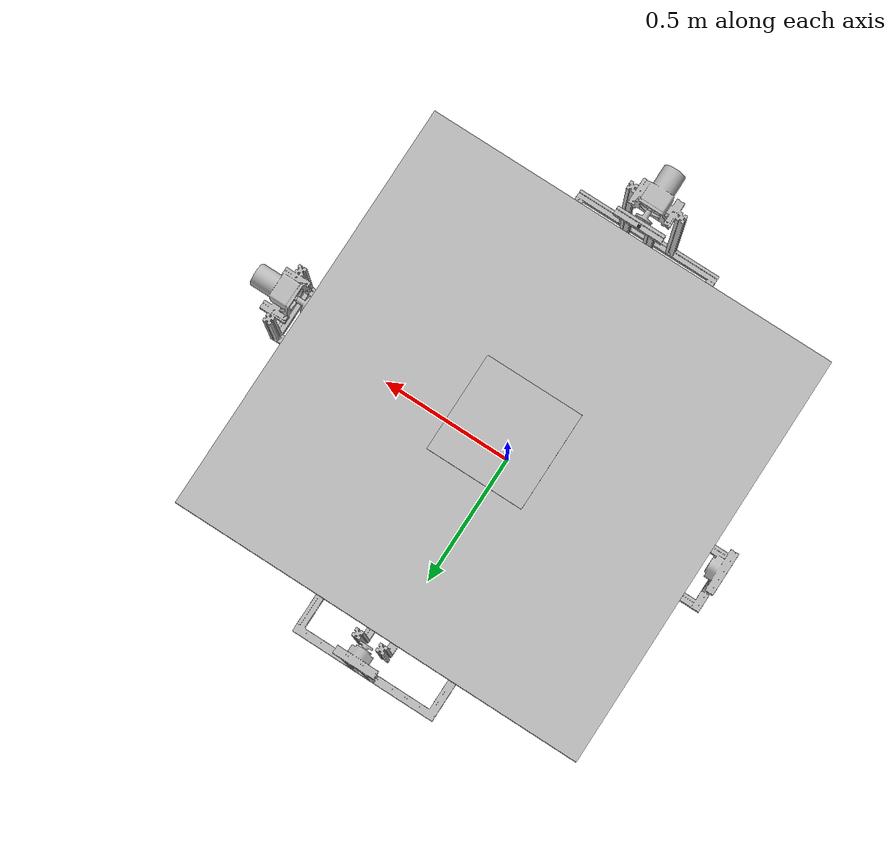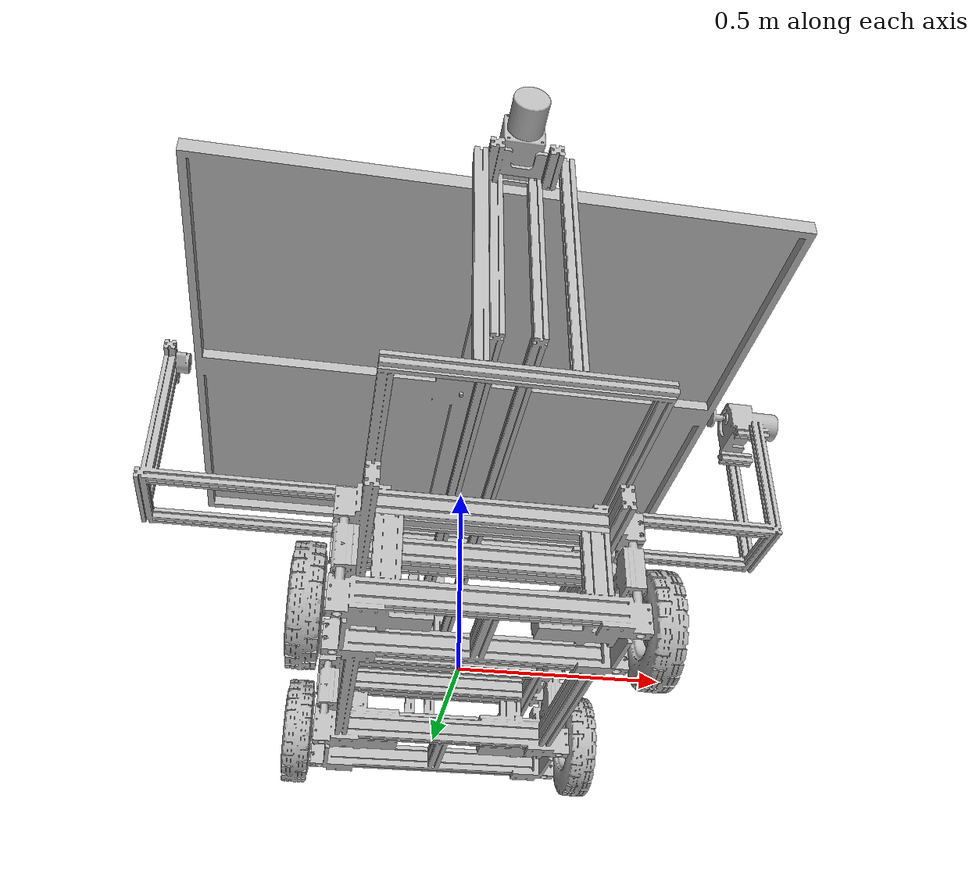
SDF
<sdf version='1.6'>
  <model name='Mobile_Leveling_Platform_V2'>
    <link name='base_link'>
      <pose frame=''>0 0 0 0 -0 0</pose>
      <inertial>
        <pose frame=''>4e-06 0.005832 0.153015 0 -0 0</pose>
        <mass>35.5236</mass>
        <inertia>
          <ixx>12.5602</ixx>
          <ixy>5.35833e-06</ixy>
          <ixz>-1.17498e-06</ixz>
          <iyy>5.74336</iyy>
          <iyz>-0.0289936</iyz>
          <izz>12.8391</izz>
        </inertia>
      </inertial>
      <collision name='base_link_collision'>
        <pose frame=''>0 0 0 0 -0 0</pose>
        <geometry>
          <box>
            <size>0.64 0.998 0.222</size>
          </box>
        </geometry>
      </collision>
      <collision name='base_link_fixed_joint_lump__imu_link_base_collision_1'>
        <pose frame=''>0 0 0.111 0 -0 0</pose>
        <geometry>
          <box>
            <size>0.01 0.01 0.01</size>
          </box>
        </geometry>
        <surface>
          <contact>
            <ode/>
          </contact>
          <friction>
            <ode/>
          </friction>
        </surface>
      </collision>
      <collision name='base_link_fixed_joint_lump__mating_link_collision_2'>
        <pose frame=''>1e-05 -0.02989 0.160848 0 -0 0</pose>
        <geometry>
          <box>
            <size>0.64 1.81 0.1</size>
          </box>
        </geometry>
      </collision>
      <collision name='base_link_fixed_joint_lump__front_leveling_link_collision_3'>
        <pose frame=''>-0.006 -0.91289 0.57249 0 -0 0</pose>
        <geometry>
          <box>
            <size>0.218 0.153 0.697</size>
          </box>
        </geometry>
      </collision>
      <collision name='base_link_fixed_joint_lump__rear_Leveling_link_collision_4'>
        <pose frame=''>0 0.882161 0.57749 0 -0 0</pose>
        <geometry>
          <box>
            <size>0.1535 0.08 0.697</size>
          </box>
        </geometry>
      </collision>
      <visual name='base_link_visual'>
        <pose frame=''>0 1.5 0 0 -0 0</pose>
        <geometry>
          <mesh>
            <scale>1 1 1</scale>
            <uri>model://Mobile_Leveling_Platform_V2/meshes/base_link.STL</uri>
          </mesh>
        </geometry>
      </visual>
      <visual name='base_link_fixed_joint_lump__imu_link_base_visual_1'>
        <pose frame=''>0 0 0.111 0 -0 0</pose>
        <geometry>
          <box>
            <size>0.01 0.01 0.01</size>
          </box>
        </geometry>
        <material>
          <script>
            <uri>__default__</uri>
            <name>__default__</name>
          </script>
        </material>
      </visual>
      <visual name='base_link_fixed_joint_lump__mating_link_visual_2'>
        <pose frame=''>-0.28 0.88511 0.20249 0 -0 0</pose>
        <geometry>
          <mesh>
            <scale>1 1 1</scale>
            <uri>model://Mobile_Leveling_Platform_V2/meshes/mating_link.STL</uri>
          </mesh>
        </geometry>
      </visual>
      <visual name='base_link_fixed_joint_lump__front_leveling_link_visual_3'>
        <pose frame=''>0.094 -0.88289 0.21749 0 -0 0</pose>
        <geometry>
          <mesh>
            <scale>1 1 1</scale>
            <uri>model://Mobile_Leveling_Platform_V2/meshes/front_leveling_link.STL</uri>
          </mesh>
        </geometry>
      </visual>
      <visual name='base_link_fixed_joint_lump__rear_Leveling_link_visual_4'>
        <pose frame=''>-0.03175 0.88511 0.21749 0 -0 0</pose>
        <geometry>
          <mesh>
            <scale>1 1 1</scale>
            <uri>model://Mobile_Leveling_Platform_V2/meshes/rear_Leveling_link.STL</uri>
          </mesh>
        </geometry>
      </visual>
      <gravity>1</gravity>
      <velocity_decay/>
      <gravity>1</gravity>
      <sensor name='imu_sensor' type='imu'>
        <always_on>1</always_on>
        <update_rate>100</update_rate>
        <visualize>1</visualize>
        <topic>__default_topic__</topic>
        <plugin name='imu_plugin' filename='libgazebo_ros_imu_sensor.so'>
          <topicName>imu_base</topicName>
          <bodyName>imu_link_base</bodyName>
          <updateRateHZ>10.0</updateRateHZ>
          <gaussianNoise>0.0</gaussianNoise>
          <xyzOffset>0 0 0</xyzOffset>
          <rpyOffset>0 0 0</rpyOffset>
          <frameName>imu_link_base</frameName>
          <initialOrientationAsReference>0</initialOrientationAsReference>
        </plugin>
        <pose frame=''>0 0 0.111 0 -0 0</pose>
      </sensor>
    </link>
    <link name='front_L_motor_rev_link'>
      <pose frame=''>0.363 -0.3709 -0.041791 3.14159 -1.57079 3.14159</pose>
      <inertial>
        <pose frame=''>0 0 -0.010725 0 -0 0</pose>
        <mass>3.03082</mass>
        <inertia>
          <ixx>0.0156335</ixx>
          <ixy>-4.20874e-07</ixy>
          <ixz>-5.7378e-07</ixz>
          <iyy>0.0156294</iyy>
          <iyz>-1.7765e-07</iyz>
          <izz>0.0290559</izz>
        </inertia>
      </inertial>
      <collision name='front_L_motor_rev_link_collision'>
        <pose frame=''>0 0 0 0 -0 0</pose>
        <geometry>
          <mesh>
            <scale>1 1 1</scale>
            <uri>model://Mobile_Leveling_Platform_V2/meshes/front_L_motor_rev_link.STL</uri>
          </mesh>
        </geometry>
      </collision>
      <collision name='front_L_motor_rev_link_fixed_joint_lump__front_L_tire_link_collision_1'>
        <pose frame=''>0 0 -0.011 3.14159 1.57079 3.0095</pose>
        <geometry>
          <mesh>
            <scale>1 1 1</scale>
            <uri>model://Mobile_Leveling_Platform_V2/meshes/front_L_tire_link.STL</uri>
          </mesh>
        </geometry>
      </collision>
      <visual name='front_L_motor_rev_link_visual'>
        <pose frame=''>0 0 0 0 -0 0</pose>
        <geometry>
          <mesh>
            <scale>1 1 1</scale>
            <uri>model://Mobile_Leveling_Platform_V2/meshes/front_L_motor_rev_link.STL</uri>
          </mesh>
        </geometry>
      </visual>
      <visual name='front_L_motor_rev_link_fixed_joint_lump__front_L_tire_link_visual_1'>
        <pose frame=''>0 0 -0.011 3.14159 1.57079 3.0095</pose>
        <geometry>
          <mesh>
            <scale>1 1 1</scale>
            <uri>model://Mobile_Leveling_Platform_V2/meshes/front_L_tire_link.STL</uri>
          </mesh>
        </geometry>
      </visual>
    </link>
    <joint name='front_L_motor_rev_joint' type='revolute'>
      <child>front_L_motor_rev_link</child>
      <parent>base_link</parent>
      <axis>
        <xyz>1 0 4e-06</xyz>
        <limit>
          <lower>-1e+16</lower>
          <upper>1e+16</upper>
        </limit>
        <dynamics>
          <damping>0.7</damping>
          <friction>0</friction>
          <spring_reference>0</spring_reference>
          <spring_stiffness>0</spring_stiffness>
        </dynamics>
        <use_parent_model_frame>1</use_parent_model_frame>
      </axis>
    </joint>
    <link name='front_R_motor_link'>
      <pose frame=''>-0.363 -0.3709 -0.041791 7e-06 -1.57079 -3.14159</pose>
      <inertial>
        <pose frame=''>0 0 -0.010725 0 -0 0</pose>
        <mass>3.03082</mass>
        <inertia>
          <ixx>0.0156335</ixx>
          <ixy>-4.79199e-07</ixy>
          <ixz>-5.7378e-07</ixz>
          <iyy>0.0156294</iyy>
          <iyz>-1.7765e-07</iyz>
          <izz>0.0290559</izz>
        </inertia>
      </inertial>
      <collision name='front_R_motor_link_collision'>
        <pose frame=''>0 0 0 0 -0 0</pose>
        <geometry>
          <mesh>
            <scale>1 1 1</scale>
            <uri>model://Mobile_Leveling_Platform_V2/meshes/front_R_motor_link.STL</uri>
          </mesh>
        </geometry>
      </collision>
      <collision name='front_R_motor_link_fixed_joint_lump__front_R_tire_link_collision_1'>
        <pose frame=''>0 0 -0.011 3.14159 1.57079 2.99433</pose>
        <geometry>
          <mesh>
            <scale>1 1 1</scale>
            <uri>model://Mobile_Leveling_Platform_V2/meshes/front_R_tire_link.STL</uri>
          </mesh>
        </geometry>
      </collision>
      <visual name='front_R_motor_link_visual'>
        <pose frame=''>0 0 0 0 -0 0</pose>
        <geometry>
          <mesh>
            <scale>1 1 1</scale>
            <uri>model://Mobile_Leveling_Platform_V2/meshes/front_R_motor_link.STL</uri>
          </mesh>
        </geometry>
      </visual>
      <visual name='front_R_motor_link_fixed_joint_lump__front_R_tire_link_visual_1'>
        <pose frame=''>0 0 -0.011 3.14159 1.57079 2.99433</pose>
        <geometry>
          <mesh>
            <scale>1 1 1</scale>
            <uri>model://Mobile_Leveling_Platform_V2/meshes/front_R_tire_link.STL</uri>
          </mesh>
        </geometry>
      </visual>
    </link>
    <joint name='front_R_motor_rev_joint' type='revolute'>
      <child>front_R_motor_link</child>
      <parent>base_link</parent>
      <axis>
        <xyz>1 7e-06 4e-06</xyz>
        <limit>
          <lower>-1e+16</lower>
          <upper>1e+16</upper>
        </limit>
        <dynamics>
          <damping>0.7</damping>
          <friction>0.8</friction>
          <spring_reference>0</spring_reference>
          <spring_stiffness>0</spring_stiffness>
        </dynamics>
        <use_parent_model_frame>1</use_parent_model_frame>
      </axis>
    </joint>
    <link name='front_motor_rev_link'>
      <pose frame=''>0 -0.82789 0.88749 -3.14159 -0 3.14159</pose>
      <inertial>
        <pose frame=''>0.001383 0.842231 0.334186 0 -0 0</pose>
        <mass>8.64113</mass>
        <inertia>
          <ixx>1.23967</ixx>
          <ixy>-0.00013831</ixy>
          <ixz>-5.9428e-05</ixz>
          <iyy>1.16119</iyy>
          <iyz>-0.0201866</iyz>
          <izz>2.00925</izz>
        </inertia>
      </inertial>
      <collision name='front_motor_rev_link_collision'>
        <pose frame=''>0 0 0 0 -0 0</pose>
        <geometry>
          <mesh>
            <scale>1 1 1</scale>
            <uri>model://Mobile_Leveling_Platform_V2/meshes/front_motor_rev_link.STL</uri>
          </mesh>
        </geometry>
      </collision>
      <collision name='front_motor_rev_link_fixed_joint_lump__GPS_link_collision_1'>
        <pose frame=''>0 0.061814 -0.0055 0 -1e-06 0</pose>
        <geometry>
          <box>
            <size>0.01 0.01 0.01</size>
          </box>
        </geometry>
        <surface>
          <contact>
            <ode/>
          </contact>
          <friction>
            <ode/>
          </friction>
        </surface>
      </collision>
      <collision name='front_motor_rev_link_fixed_joint_lump__under_upper_link_collision_2'>
        <pose frame=''>0.001403 0.853808 0.339169 3.14159 -0 3.14159</pose>
        <geometry>
          <box>
            <size>1.16635 1.16635 0.505</size>
          </box>
        </geometry>
      </collision>
      <visual name='front_motor_rev_link_visual'>
        <pose frame=''>0 0 0 0 -0 0</pose>
        <geometry>
          <mesh>
            <scale>1 1 1</scale>
            <uri>model://Mobile_Leveling_Platform_V2/meshes/front_motor_rev_link.STL</uri>
          </mesh>
        </geometry>
      </visual>
      <visual name='front_motor_rev_link_fixed_joint_lump__GPS_link_visual_1'>
        <pose frame=''>0 0.061814 -0.0055 0 -1e-06 0</pose>
        <geometry>
          <box>
            <size>0.01 0.01 0.01</size>
          </box>
        </geometry>
        <material>
          <script>
            <name>Gazebo/Black</name>
            <uri>file://media/materials/scripts/gazebo.material</uri>
          </script>
        </material>
      </visual>
      <visual name='front_motor_rev_link_fixed_joint_lump__under_upper_link_visual_2'>
        <pose frame=''>0.087597 0.053 0.015743 3.14159 -0 3.14159</pose>
        <geometry>
          <mesh>
            <scale>1 1 1</scale>
            <uri>model://Mobile_Leveling_Platform_V2/meshes/under_upper_link.STL</uri>
          </mesh>
        </geometry>
      </visual>
      <gravity>1</gravity>
      <velocity_decay/>
    </link>
    <joint name='front_motor_rev_joint' type='revolute'>
      <child>front_motor_rev_link</child>
      <parent>base_link</parent>
      <axis>
        <xyz>7e-06 1 -7e-06</xyz>
        <limit>
          <lower>-0.5236</lower>
          <upper>0.5236</upper>
          <effort>10</effort>
          <velocity>10</velocity>
        </limit>
        <dynamics>
          <damping>0.7</damping>
          <friction>0.8</friction>
          <spring_reference>0</spring_reference>
          <spring_stiffness>0</spring_stiffness>
        </dynamics>
        <use_parent_model_frame>1</use_parent_model_frame>
      </axis>
    </joint>
    <link name='upper_motor_rev_link'>
      <pose frame=''>0.789403 0.018861 0.871735 0 -0.005831 1.5708</pose>
      <inertial>
        <pose frame=''>0.003475 0.786858 0.00849 0 -0 0</pose>
        <mass>12.4003</mass>
        <inertia>
          <ixx>2.27975</ixx>
          <ixy>-6.66254e-05</ixy>
          <ixz>0.013225</ixz>
          <iyy>2.26517</iyy>
          <iyz>-0.000159938</iyz>
          <izz>4.54256</izz>
        </inertia>
      </inertial>
      <collision name='upper_motor_rev_link_collision'>
        <pose frame=''>0 0 0 0 -0 0</pose>
        <geometry>
          <mesh>
            <scale>1 1 1</scale>
            <uri>model://Mobile_Leveling_Platform_V2/meshes/upper_motor_rev_link.STL</uri>
          </mesh>
        </geometry>
      </collision>
      <collision name='upper_motor_rev_link_fixed_joint_lump__upper_link_collision_1'>
        <pose frame=''>0.003478 0.788408 0.008206 -0.005846 -0 -1.5708</pose>
        <geometry>
          <box>
            <size>1.5 1.5 0.03</size>
          </box>
        </geometry>
      </collision>
      <collision name='upper_motor_rev_link_fixed_joint_lump__imu_link_upper_collision_2'>
        <pose frame=''>0.003052 0.788817 -0.010018 -0.005846 -0 -1.5708</pose>
        <geometry>
          <box>
            <size>0.01 0.01 0.01</size>
          </box>
        </geometry>
        <surface>
          <contact>
            <ode/>
          </contact>
          <friction>
            <ode/>
          </friction>
        </surface>
      </collision>
      <collision name='upper_motor_rev_link_fixed_joint_lump__marker_pad_collision_3'>
        <pose frame=''>0.00396 0.788 0.035978 -0.005846 -0 -1.5708</pose>
        <geometry>
          <box>
            <size>0.3556 0.3556 1e-05</size>
          </box>
        </geometry>
      </collision>
      <collision name='upper_motor_rev_link_fixed_joint_lump__marker_collision_4'>
        <pose frame=''>0.00396 0.788 0.035978 -0.005846 -0 -1.5708</pose>
        <geometry>
          <box>
            <size>0.3556 0.3556 1e-05</size>
          </box>
        </geometry>
        <surface>
          <contact>
            <ode/>
          </contact>
          <friction>
            <ode/>
          </friction>
        </surface>
      </collision>
      <visual name='upper_motor_rev_link_visual'>
        <pose frame=''>0 0 0 0 -0 0</pose>
        <geometry>
          <mesh>
            <scale>1 1 1</scale>
            <uri>model://Mobile_Leveling_Platform_V2/meshes/upper_motor_rev_link.STL</uri>
          </mesh>
        </geometry>
      </visual>
      <visual name='upper_motor_rev_link_fixed_joint_lump__upper_link_visual_1'>
        <pose frame=''>0.003838 0.788 0.014978 -0.005846 -0 -1.5708</pose>
        <geometry>
          <mesh>
            <scale>1 1 1</scale>
            <uri>model://Mobile_Leveling_Platform_V2/meshes/upper.STL</uri>
          </mesh>
        </geometry>
      </visual>
      <visual name='upper_motor_rev_link_fixed_joint_lump__imu_link_upper_visual_2'>
        <pose frame=''>0.003052 0.788817 -0.010018 -0.005846 -0 -1.5708</pose>
        <geometry>
          <box>
            <size>0.01 0.01 0.01</size>
          </box>
        </geometry>
        <material>
          <script>
            <uri>__default__</uri>
            <name>__default__</name>
          </script>
        </material>
      </visual>
      <visual name='upper_motor_rev_link_fixed_joint_lump__marker_pad_visual_3'>
        <pose frame=''>0.00396 0.788 0.035978 -0.005846 -0 -1.5708</pose>
        <geometry>
          <box>
            <size>0.3556 0.3556 1e-05</size>
          </box>
        </geometry>
      </visual>
      <visual name='upper_motor_rev_link_fixed_joint_lump__marker_visual_4'>
        <pose frame=''>0.00396 0.788 0.035978 -0.005846 -0 -1.5708</pose>
        <geometry>
          <box>
            <size>0.3556 0.3556 0.005</size>
          </box>
        </geometry>
        <material>
          <script>
            <name>ArucoVisualMarker7/Marker</name>
            <uri>file://media/materials/scripts/gazebo.material</uri>
          </script>
        </material>
      </visual>
      <velocity_decay/>
      <gravity>1</gravity>
      <sensor name='imu_sensor' type='imu'>
        <always_on>1</always_on>
        <update_rate>100</update_rate>
        <visualize>1</visualize>
        <topic>__default_topic__</topic>
        <plugin name='imu_plugin' filename='libgazebo_ros_imu_sensor.so'>
          <topicName>imu_upper</topicName>
          <bodyName>imu_link_upper</bodyName>
          <updateRateHZ>10.0</updateRateHZ>
          <gaussianNoise>0.0</gaussianNoise>
          <xyzOffset>0 0 0</xyzOffset>
          <rpyOffset>0 0 0</rpyOffset>
          <frameName>imu_link_upper</frameName>
          <initialOrientationAsReference>0</initialOrientationAsReference>
        </plugin>
        <pose frame=''>0.00343 0.788408 -2e-05 -0.005846 -0 -1.5708</pose>
      </sensor>
      <gravity>1</gravity>
      <velocity_decay/>
    </link>
    <joint name='upper_motor_rev_joint' type='revolute'>
      <child>upper_motor_rev_link</child>
      <parent>front_motor_rev_link</parent>
      <axis>
        <xyz>1 4e-06 -0</xyz>
        <limit>
          <lower>-0.5236</lower>
          <upper>0.5236</upper>
          <effort>10</effort>
          <velocity>10</velocity>
        </limit>
        <dynamics>
          <damping>0.7</damping>
          <friction>0.8</friction>
          <spring_reference>0</spring_reference>
          <spring_stiffness>0</spring_stiffness>
        </dynamics>
        <use_parent_model_frame>1</use_parent_model_frame>
      </axis>
    </joint>
    <link name='rear_L_motor_rev_link'>
      <pose frame=''>0.363 0.3731 -0.041791 3.14159 -1.57079 3.14159</pose>
      <inertial>
        <pose frame=''>0 0 -0.010725 0 -0 0</pose>
        <mass>3.03082</mass>
        <inertia>
          <ixx>0.0156335</ixx>
          <ixy>6.36247e-07</ixy>
          <ixz>-5.7378e-07</ixz>
          <iyy>0.0156294</iyy>
          <iyz>-1.7765e-07</iyz>
          <izz>0.0290559</izz>
        </inertia>
      </inertial>
      <collision name='rear_L_motor_rev_link_collision'>
        <pose frame=''>0 0 0 0 -0 0</pose>
        <geometry>
          <mesh>
            <scale>1 1 1</scale>
            <uri>model://Mobile_Leveling_Platform_V2/meshes/rear_L_motor_rev_link.STL</uri>
          </mesh>
        </geometry>
      </collision>
      <collision name='rear_L_motor_rev_link_fixed_joint_lump__rear_L_tire_link_collision_1'>
        <pose frame=''>0 0 -0.011 3.14159 -1.57079 -3.00622</pose>
        <geometry>
          <mesh>
            <scale>1 1 1</scale>
            <uri>model://Mobile_Leveling_Platform_V2/meshes/rear_L_tire_link.STL</uri>
          </mesh>
        </geometry>
      </collision>
      <visual name='rear_L_motor_rev_link_visual'>
        <pose frame=''>0 0 0 0 -0 0</pose>
        <geometry>
          <mesh>
            <scale>1 1 1</scale>
            <uri>model://Mobile_Leveling_Platform_V2/meshes/rear_L_motor_rev_link.STL</uri>
          </mesh>
        </geometry>
      </visual>
      <visual name='rear_L_motor_rev_link_fixed_joint_lump__rear_L_tire_link_visual_1'>
        <pose frame=''>0 0 -0.011 3.14159 -1.57079 -3.00622</pose>
        <geometry>
          <mesh>
            <scale>1 1 1</scale>
            <uri>model://Mobile_Leveling_Platform_V2/meshes/rear_L_tire_link.STL</uri>
          </mesh>
        </geometry>
      </visual>
    </link>
    <joint name='rear_L_motor_rev_joint' type='revolute'>
      <child>rear_L_motor_rev_link</child>
      <parent>base_link</parent>
      <axis>
        <xyz>1 0 4e-06</xyz>
        <limit>
          <lower>-1e+16</lower>
          <upper>1e+16</upper>
        </limit>
        <dynamics>
          <damping>0.7</damping>
          <friction>0.8</friction>
          <spring_reference>0</spring_reference>
          <spring_stiffness>0</spring_stiffness>
        </dynamics>
        <use_parent_model_frame>1</use_parent_model_frame>
      </axis>
    </joint>
    <link name='rear_R_motor_rev_link'>
      <pose frame=''>-0.363 0.3731 -0.041791 7e-06 -1.57079 -3.14159</pose>
      <inertial>
        <pose frame=''>0 0 -0.010725 0 -0 0</pose>
        <mass>3.03082</mass>
        <inertia>
          <ixx>0.0156335</ixx>
          <ixy>-4.49427e-07</ixy>
          <ixz>-5.7378e-07</ixz>
          <iyy>0.0156294</iyy>
          <iyz>-1.7765e-07</iyz>
          <izz>0.0290559</izz>
        </inertia>
      </inertial>
      <collision name='rear_R_motor_rev_link_collision'>
        <pose frame=''>0 0 0 0 -0 0</pose>
        <geometry>
          <mesh>
            <scale>1 1 1</scale>
            <uri>model://Mobile_Leveling_Platform_V2/meshes/rear_R_motor_rev_link.STL</uri>
          </mesh>
        </geometry>
      </collision>
      <collision name='rear_R_motor_rev_link_fixed_joint_lump__rear_R_tire_link_collision_1'>
        <pose frame=''>0 0 -0.011 3.14159 1.57079 3.00209</pose>
        <geometry>
          <mesh>
            <scale>1 1 1</scale>
            <uri>model://Mobile_Leveling_Platform_V2/meshes/rear_R_tire_link.STL</uri>
          </mesh>
        </geometry>
      </collision>
      <visual name='rear_R_motor_rev_link_visual'>
        <pose frame=''>0 0 0 0 -0 0</pose>
        <geometry>
          <mesh>
            <scale>1 1 1</scale>
            <uri>model://Mobile_Leveling_Platform_V2/meshes/rear_R_motor_rev_link.STL</uri>
          </mesh>
        </geometry>
      </visual>
      <visual name='rear_R_motor_rev_link_fixed_joint_lump__rear_R_tire_link_visual_1'>
        <pose frame=''>0 0 -0.011 3.14159 1.57079 3.00209</pose>
        <geometry>
          <mesh>
            <scale>1 1 1</scale>
            <uri>model://Mobile_Leveling_Platform_V2/meshes/rear_R_tire_link.STL</uri>
          </mesh>
        </geometry>
      </visual>
    </link>
    <joint name='rear_R_motor_rev_joint' type='revolute'>
      <child>rear_R_motor_rev_link</child>
      <parent>base_link</parent>
      <axis>
        <xyz>1 7e-06 4e-06</xyz>
        <limit>
          <lower>-1e+16</lower>
          <upper>1e+16</upper>
        </limit>
        <dynamics>
          <damping>0.7</damping>
          <friction>0.8</friction>
          <spring_reference>0</spring_reference>
          <spring_stiffness>0</spring_stiffness>
        </dynamics>
        <use_parent_model_frame>1</use_parent_model_frame>
      </axis>
    </joint>
    <plugin name='skid_steer_drive_controller' filename='libgazebo_ros_skid_steer_drive.so'>
      <updateRate>100</updateRate>
      <robotNamespace>/platform</robotNamespace>
      <leftFrontJoint>front_L_motor_rev_joint</leftFrontJoint>
      <rightFrontJoint>front_R_motor_rev_joint</rightFrontJoint>
      <leftRearJoint>rear_L_motor_rev_joint</leftRearJoint>
      <rightRearJoint>rear_R_motor_rev_joint</rightRearJoint>
      <wheelSeparation>0.67</wheelSeparation>
      <wheelDiameter>0.264453</wheelDiameter>
      <robotBaseFrame>base_link</robotBaseFrame>
      <torque>100</torque>
      <commandTopic>twist2gazebo</commandTopic>
      <broadcastTF>0</broadcastTF>
    </plugin>
    <plugin name='gazebo_ros_control' filename='libgazebo_ros_control.so'>
      <robotNamespace>platform/MLP</robotNamespace>
      <robotSimType>gazebo_ros_control/DefaultRobotHWSim</robotSimType>
    </plugin>
    <static>0</static>
    <plugin name='GazeboRosGps' filename='libhector_gazebo_ros_gps.so'>
      <updateRate>100</updateRate>
      <robotNamespace>platform/MLP</robotNamespace>
      <frameId>default_empty</frameId>
      <topicName>fix</topicName>
      <velocityTopicName>fix_velocity</velocityTopicName>
      <referenceLatitude>36.146581</referenceLatitude>
      <referenceLongitude>128.388039</referenceLongitude>
      <referenceHeading>90</referenceHeading>
      <referenceAltitude>0</referenceAltitude>
      <status>STATIS_FIX</status>
      <service>SERVICE_GPS</service>
      <offset>0 0 0 0 0 0</offset>
      <drift>0</drift>
      <driftFrequency>100</driftFrequency>
      <gaussianNoise>0</gaussianNoise>
      <velocityOffset>0</velocityOffset>
      <velocityDrift>0</velocityDrift>
      <velocityDriftFrequency>100</velocityDriftFrequency>
      <velocityGaussianNoise>0</velocityGaussianNoise>
      <bodyName>front_motor_rev_link</bodyName>
      <xyzOffset>-9.7145e-16 -0.030907 -0.0095</xyzOffset>
      <rpyOffset>3.14159 -6.5359e-07 3.14159</rpyOffset>
    </plugin>
  </model>
</sdf>
